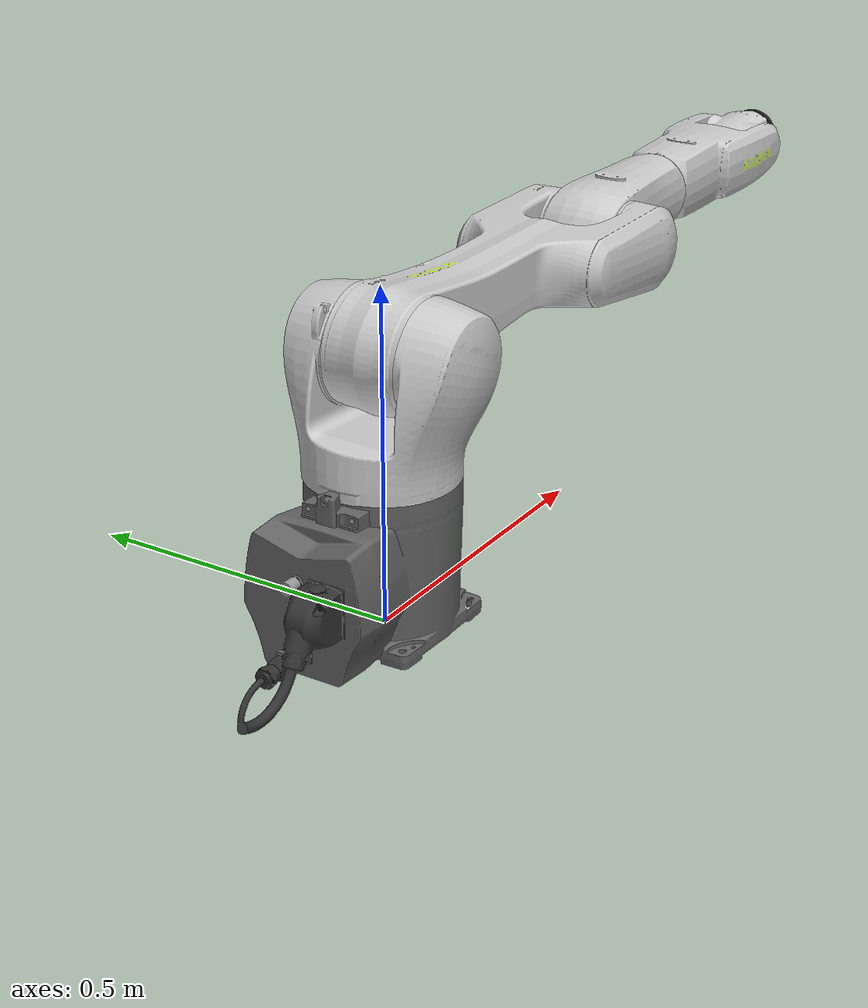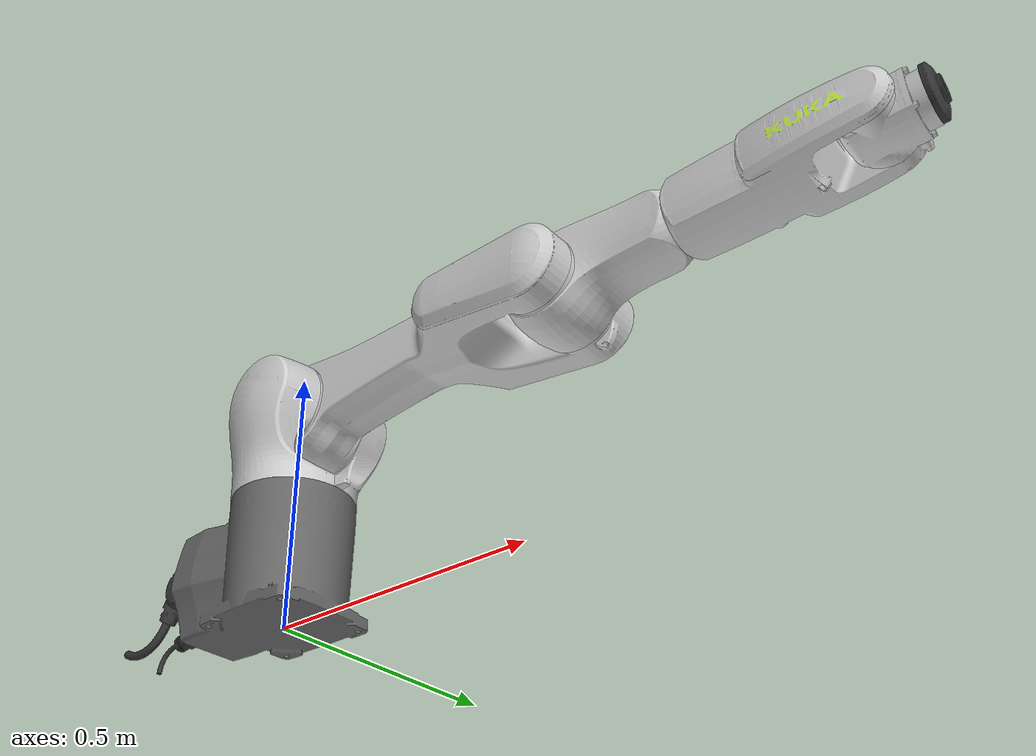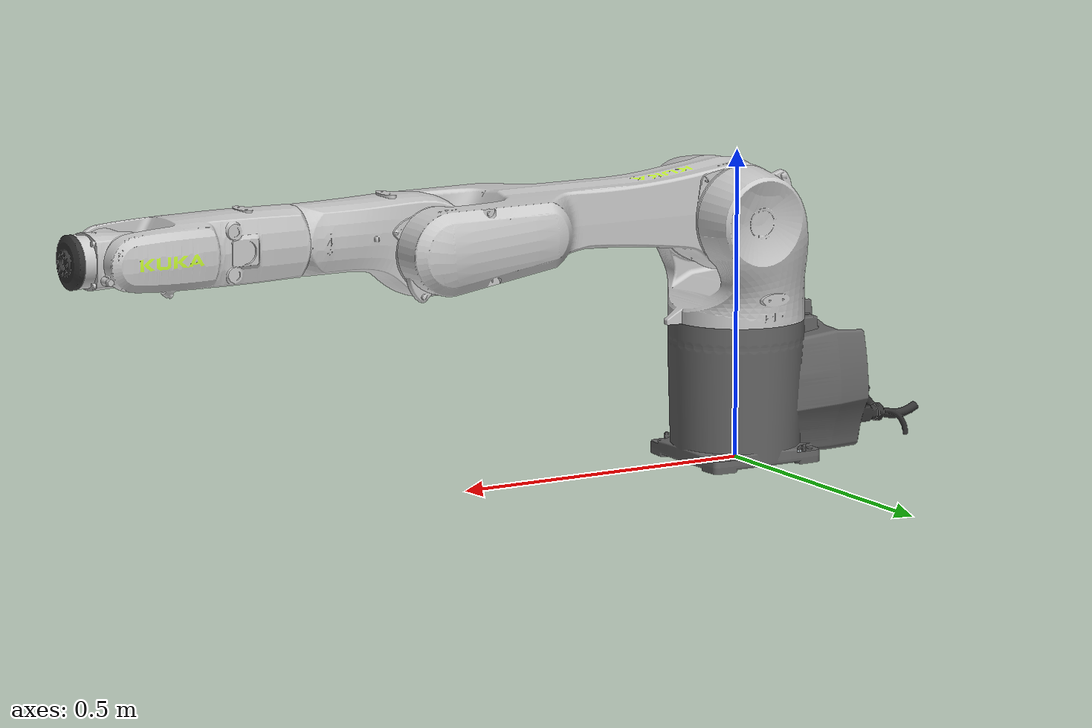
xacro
<?xml version="1.0"?>
<robot xmlns:xacro="http://www.ros.org/wiki/xacro" name="kr10_r1100_2">
  <xacro:arg name="prefix" default=""/>
  <xacro:arg name="rsi_ip" default="0.0.0.0"/>
  <xacro:arg name="rsi_port" default="49152"/>
  <xacro:arg name="connection_timeout" default="30"/>
  <xacro:arg name="communication_timeout" default="1"/>
  <xacro:arg name="has_ft_sensor" default="false"/>
  <xacro:arg name="load_ros2_control" default="false"/>
  <xacro:arg name="connected_to" default=""/>
  <xacro:arg name="xyz" default="0 0 0"/>
  <xacro:arg name="rpy" default="0 0 0"/>

  <xacro:include filename="$(find kuka_kr_description)/robots/kr10_r1100_2.xacro"/>

  <xacro:kr10_r1100_2 prefix="$(arg prefix)" connected_to="$(arg connected_to)" xyz="$(arg xyz)" rpy="$(arg rpy)"/>
  <xacro:if value="$(arg load_ros2_control)">
    <xacro:include filename="$(find kuka_kr_description)/ros2_control/kr10_r1100_2.ros2_control.xacro"/>
    <xacro:kr10_r1100_2_interface
            name="RsiInterface"
            prefix="$(arg prefix)"
            rsi_ip="$(arg rsi_ip)"
            rsi_port="$(arg rsi_port)"
            connection_timeout="$(arg connection_timeout)"
            communication_timeout="$(arg communication_timeout)"
            has_ft_sensor="$(arg has_ft_sensor)"
    />
  </xacro:if>
</robot>

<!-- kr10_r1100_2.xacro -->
<robot xmlns:xacro="http://www.ros.org/wiki/xacro" name="kr10_r1100_2_macro">
  <xacro:macro name="kr10_r1100_2" params="prefix:='kr10_r1100_2_' connected_to:='' xyz:='0 0 0' rpy:='0 0 0'">
    <!-- LINKS -->
    <!-- base link -->
    <link name="${prefix}base_link">
      <visual>
        <origin xyz="0 0 0" rpy="0 0 0"/>
        <geometry>
          <mesh filename="package://kuka_kr_description/meshes/kr10_r1100_2/visual/base_link.dae" />
        </geometry>
      </visual>
    </link>
    <!-- link 1 (A1) -->
    <link name="${prefix}link_1">
      <visual>
        <origin xyz="0 0 0" rpy="0 0 0"/>
        <geometry>
          <mesh filename="package://kuka_kr_description/meshes/kr10_r1100_2/visual/link_1.dae" />
        </geometry>
      </visual>
    </link>
    <!-- link 2 -->
    <link name="${prefix}link_2">
      <visual>
        <origin xyz="0 0 0" rpy="0 0 0"/>
        <geometry>
          <mesh filename="package://kuka_kr_description/meshes/kr10_r1100_2/visual/link_2.dae"/>
        </geometry>
      </visual>
    </link>
    <!-- link 3 -->
    <link name="${prefix}link_3">
      <visual>
        <origin xyz="0 0 0" rpy="0 0 0"/>
        <geometry>
          <mesh filename="package://kuka_kr_description/meshes/kr10_r1100_2/visual/link_3.dae" />
        </geometry>
      </visual>
    </link>
    <!-- link 4 -->
    <link name="${prefix}link_4">
      <visual>
        <origin xyz="0 0 0" rpy="0 0 0"/>
        <geometry>
          <mesh filename="package://kuka_kr_description/meshes/kr10_r1100_2/visual/link_4.dae" />
        </geometry>
      </visual>
    </link>
    <!-- link 5 -->
    <link name="${prefix}link_5">
      <visual>
        <origin xyz="0 0 0" rpy="0 0 0"/>
        <geometry>
          <mesh filename="package://kuka_kr_description/meshes/kr10_r1100_2/visual/link_5.dae" />
        </geometry>
      </visual>
    </link>
    <!-- link 6 -->
    <link name="${prefix}link_6">
      <visual>
        <origin xyz="0 0 0" rpy="0 0 0"/>
        <geometry>
          <mesh filename="package://kuka_kr_description/meshes/kr10_r1100_2/visual/link_6.dae" />
        </geometry>
      </visual>
    </link>
    <!-- tool 0 -->
    <!-- Following REP199, this frame shall be use to attach EEF or other equipment -->
    <link name="${prefix}flange" />
    <!-- END LINKS -->

    <!-- JOINTS -->
    <!-- joint 1 (A1) -->
    <joint name="${prefix}joint_a1" type="revolute">
      <origin xyz="0 0 0.4" rpy="0 0 0"/>
      <parent link="${prefix}base_link"/>
      <child link="${prefix}link_1"/>
      <axis xyz="0 0 -1"/>
      <limit effort="0" lower="${radians(-170)}" upper="${radians(170)}" velocity="${radians(300)}"/>
    </joint>
    <!-- joint 2 (A2) -->
    <joint name="${prefix}joint_a2" type="revolute">
      <origin xyz="0.025 0 0" rpy="0 0 0"/>
      <parent link="${prefix}link_1"/>
      <child link="${prefix}link_2"/>
      <axis xyz="0 1 0"/>
      <limit effort="0" lower="${radians(-190)}" upper="${radians(45)}" velocity="${radians(225)}"/>
    </joint>
    <!-- joint 3 (A3) -->
    <joint name="${prefix}joint_a3" type="revolute">
      <origin xyz="0.56 0 0" rpy="0 0 0"/>
      <parent link="${prefix}link_2"/>
      <child link="${prefix}link_3"/>
      <axis xyz="0 1 0"/>
      <limit effort="0" lower="${radians(-120)}" upper="${radians(156)}" velocity="${radians(330)}"/>
    </joint>
    <!-- joint 4 (A4) -->
    <joint name="${prefix}joint_a4" type="revolute">
      <origin xyz="0.515 0 0.025" rpy="0 0 0"/>
      <parent link="${prefix}link_3"/>
      <child link="${prefix}link_4"/>
      <axis xyz="-1 0 0"/>
      <limit effort="0" lower="${radians(-185)}" upper="${radians(185)}" velocity="${radians(360)}"/>
    </joint>
    <!-- joint 5 (A5) -->
    <joint name="${prefix}joint_a5" type="revolute">
      <origin xyz="0 0 0" rpy="0 0 0"/>
      <parent link="${prefix}link_4"/>
      <child link="${prefix}link_5"/>
      <axis xyz="0 1 0"/>
      <limit effort="0" lower="${radians(-120)}" upper="${radians(120)}" velocity="${radians(360)}"/>
    </joint>
    <!-- joint 6 (A6) -->
    <joint name="${prefix}joint_a6" type="revolute">
      <origin xyz="0 0 0" rpy="0 0 0"/>
      <parent link="${prefix}link_5"/>
      <child link="${prefix}link_6"/>
      <axis xyz="-1 0 0"/>
      <limit effort="0" lower="${radians(-350)}" upper="${radians(350)}" velocity="${radians(433)}"/>
    </joint>
    <!-- tool frame - fixed frame -->
    <joint name="${prefix}joint_a6-flange" type="fixed">
      <parent link="${prefix}link_6"/>
      <child link="${prefix}flange"/>
      <origin xyz="0.09 0 0" rpy="0 0 0"/>
    </joint>
    <!-- END JOINTS -->

    <xacro:if value="${connected_to == ''}">
      <xacro:property name="base_frame_name" value="world"/>
    </xacro:if>
    <xacro:unless value="${connected_to == ''}">
      <xacro:property name="base_frame_name" value="${connected_to}"/>
    </xacro:unless>
    <link name="${base_frame_name}"/>
    <joint name="${base_frame_name}-${prefix}base_link" type="fixed">
      <origin xyz="${xyz}" rpy="${rpy}"/>
      <parent link="${base_frame_name}"/>
      <child link="${prefix}base_link"/>
    </joint>

    <!-- ROS base_link to KUKA $ROBROOT coordinate system transform -->
    <link name="${prefix}base" />
    <joint name="${prefix}base_link-base" type="fixed">
      <origin xyz="0 0 0" rpy="0 0 0"/>
      <parent link="${prefix}base_link"/>
      <child link="${prefix}base"/>
    </joint>

    <!-- This frame corresponds to the $TOOL coordinate system in KUKA KRC controllers -->
    <link name="${prefix}tool0" />
    <joint name="${prefix}flange-tool0" type="fixed">
      <parent link="${prefix}flange"/>
      <child link="${prefix}tool0"/>
      <origin xyz="0 0 0" rpy="0 ${radians(90)} 0"/>
    </joint>

  </xacro:macro>
</robot>
